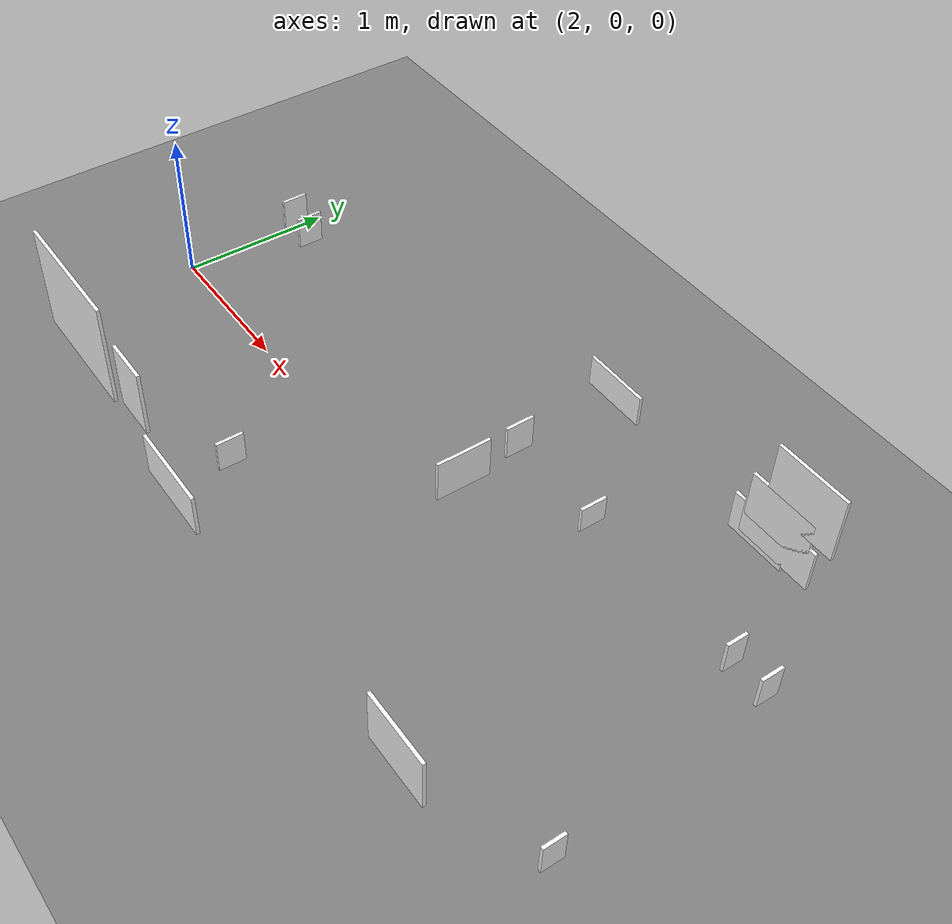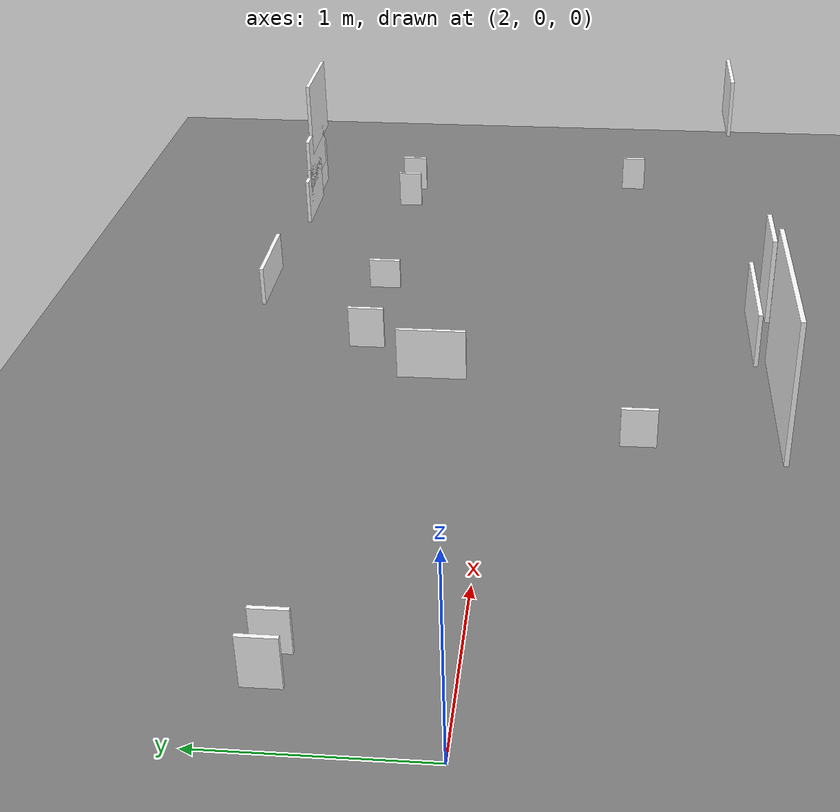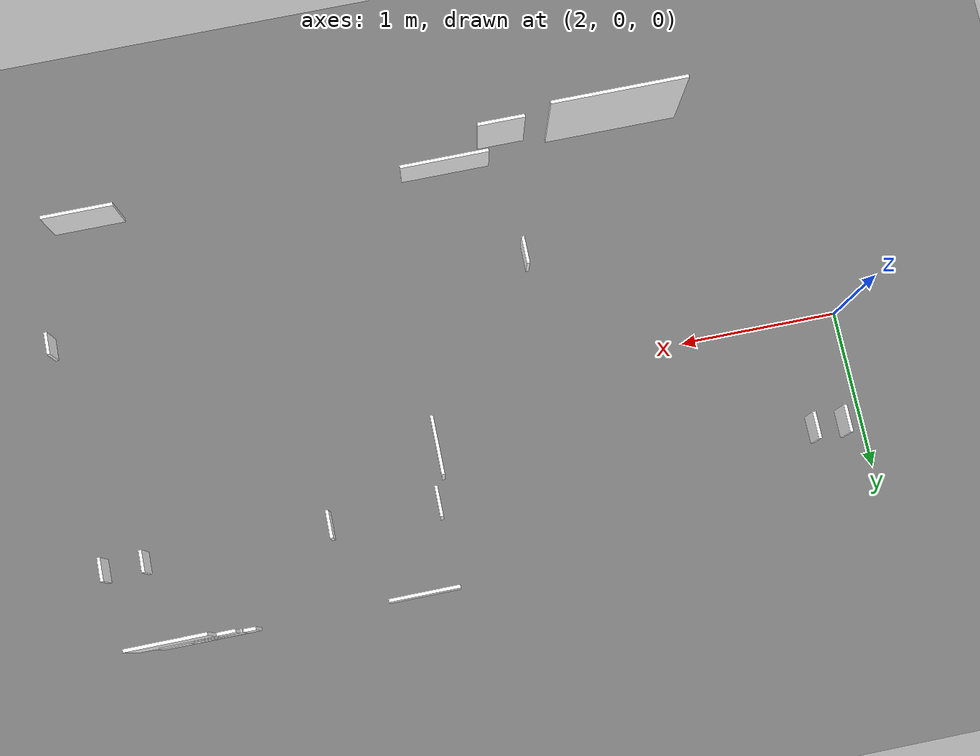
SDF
<sdf version="1.9">
 <world name="tunnel_world">
  <model name="ground_plane">
   <static>true</static>
   <link name="ground">
    <collision name="ground_collision">
     <geometry><plane><normal>0 0 1</normal><size>100 100</size></plane></geometry>
    </collision>
    <visual name="ground_visual">
     <geometry><plane><normal>0 0 1</normal><size>100 100</size></plane></geometry>
     <material>
      <diffuse>0.50 0.50 0.50 1</diffuse>
      <emissive>0.08 0.08 0.08 1</emissive>
      <ambient>0.5 0.5 0.5</ambient>
     </material>
    </visual>
   </link>
  </model>
  <model name="defect_crack_03">
   <static>true</static>
   <pose>3.956 -1.25 1.091 0 0 0</pose>
   <link name="link">
    <visual name="visual">
     <laser_retro>500</laser_retro>
     <geometry><box><size>0.278 0.02 0.4</size></box></geometry>
     <material>
      <ambient>1 1 1 1</ambient>
      <diffuse>1 1 1 1</diffuse>
      <emissive>0.05 0.05 0.05 1</emissive>
      <specular>0.05 0.05 0.05 1</specular>
      <pbr>
       <metal>
        <albedo_map>file:///home/ylf/workspace/inspection_robot/data_gen/textures/crack_5.png</albedo_map>
        <metalness>0.0</metalness>
        <roughness>0.9</roughness>
       </metal>
      </pbr>
     </material>
    </visual>
    <collision name="collision"><geometry><box><size>0.278 0.02 0.4</size></box></geometry></collision>
   </link>
  </model>
  <model name="defect_crack_04">
   <static>true</static>
   <pose>6.342 1.25 0.879 0 0 0</pose>
   <link name="link">
    <visual name="visual">
     <laser_retro>500</laser_retro>
     <geometry><box><size>0.469 0.02 0.425</size></box></geometry>
     <material>
      <ambient>1 1 1 1</ambient>
      <diffuse>1 1 1 1</diffuse>
      <emissive>0.05 0.05 0.05 1</emissive>
      <specular>0.05 0.05 0.05 1</specular>
      <pbr>
       <metal>
        <albedo_map>file:///home/ylf/workspace/inspection_robot/data_gen/textures/crack_4.png</albedo_map>
        <metalness>0.0</metalness>
        <roughness>0.9</roughness>
       </metal>
      </pbr>
     </material>
    </visual>
    <collision name="collision"><geometry><box><size>0.469 0.02 0.425</size></box></geometry></collision>
   </link>
  </model>
  <model name="defect_equip_intrusion_05">
   <static>true</static>
   <pose>4.666 0.367 0.155 0 0 0</pose>
   <link name="link">
    <visual name="visual">
     <laser_retro>900</laser_retro>
     <geometry><box><size>0.02 0.372 0.29</size></box></geometry>
     <material>
      <ambient>1 1 1 1</ambient>
      <diffuse>1 1 1 1</diffuse>
      <emissive>0.05 0.05 0.05 1</emissive>
      <specular>0.05 0.05 0.05 1</specular>
      <pbr>
       <metal>
        <albedo_map>file:///home/ylf/workspace/inspection_robot/data_gen/textures/equip_intrusion_2.png</albedo_map>
        <metalness>0.0</metalness>
        <roughness>0.9</roughness>
       </metal>
      </pbr>
     </material>
    </visual>
   </link>
  </model>
  <model name="defect_leakage_02">
   <static>true</static>
   <pose>3.277 -1.25 1.099 0 0 0</pose>
   <link name="link">
    <visual name="visual">
     <laser_retro>300</laser_retro>
     <geometry><box><size>0.797 0.02 0.644</size></box></geometry>
     <material>
      <ambient>1 1 1 1</ambient>
      <diffuse>1 1 1 1</diffuse>
      <emissive>0.05 0.05 0.05 1</emissive>
      <specular>0.05 0.05 0.05 1</specular>
      <pbr>
       <metal>
        <albedo_map>file:///home/ylf/workspace/inspection_robot/data_gen/textures/leakage_4.png</albedo_map>
        <metalness>0.0</metalness>
        <roughness>0.9</roughness>
       </metal>
      </pbr>
     </material>
    </visual>
    <collision name="collision"><geometry><box><size>0.797 0.02 0.644</size></box></geometry></collision>
   </link>
  </model>
  <model name="defect_leakage_03">
   <static>true</static>
   <pose>6.22 1.25 0.633 0 0 0</pose>
   <link name="link">
    <visual name="visual">
     <laser_retro>300</laser_retro>
     <geometry><box><size>0.446 0.02 0.306</size></box></geometry>
     <material>
      <ambient>1 1 1 1</ambient>
      <diffuse>1 1 1 1</diffuse>
      <emissive>0.05 0.05 0.05 1</emissive>
      <specular>0.05 0.05 0.05 1</specular>
      <pbr>
       <metal>
        <albedo_map>file:///home/ylf/workspace/inspection_robot/data_gen/textures/leakage_5.png</albedo_map>
        <metalness>0.0</metalness>
        <roughness>0.9</roughness>
       </metal>
      </pbr>
     </material>
    </visual>
    <collision name="collision"><geometry><box><size>0.446 0.02 0.306</size></box></geometry></collision>
   </link>
  </model>
  <model name="defect_leakage_05">
   <static>true</static>
   <pose>6.439 -1.25 0.975 0 0 0</pose>
   <link name="link">
    <visual name="visual">
     <laser_retro>300</laser_retro>
     <geometry><box><size>0.421 0.02 0.333</size></box></geometry>
     <material>
      <ambient>1 1 1 1</ambient>
      <diffuse>1 1 1 1</diffuse>
      <emissive>0.05 0.05 0.05 1</emissive>
      <specular>0.05 0.05 0.05 1</specular>
      <pbr>
       <metal>
        <albedo_map>file:///home/ylf/workspace/inspection_robot/data_gen/textures/leakage_1.png</albedo_map>
        <metalness>0.0</metalness>
        <roughness>0.9</roughness>
       </metal>
      </pbr>
     </material>
    </visual>
    <collision name="collision"><geometry><box><size>0.421 0.02 0.333</size></box></geometry></collision>
   </link>
  </model>
  <model name="defect_rail_fastener_broken_02">
   <static>true</static>
   <pose>6.541 0.717 0.264 0 0 0</pose>
   <link name="link">
    <visual name="visual">
     <laser_retro>450</laser_retro>
     <geometry><box><size>0.02 0.137 0.219</size></box></geometry>
     <material>
      <ambient>1 1 1 1</ambient>
      <diffuse>1 1 1 1</diffuse>
      <emissive>0.05 0.05 0.05 1</emissive>
      <specular>0.05 0.05 0.05 1</specular>
      <pbr>
       <metal>
        <albedo_map>file:///home/ylf/workspace/inspection_robot/data_gen/textures/rail_fastener_broken_3.png</albedo_map>
        <metalness>0.0</metalness>
        <roughness>0.9</roughness>
       </metal>
      </pbr>
     </material>
    </visual>
   </link>
  </model>
  <model name="defect_rail_fastener_broken_03">
   <static>true</static>
   <pose>5.402 0.717 0.241 0 0 0</pose>
   <link name="link">
    <visual name="visual">
     <laser_retro>450</laser_retro>
     <geometry><box><size>0.02 0.174 0.172</size></box></geometry>
     <material>
      <ambient>1 1 1 1</ambient>
      <diffuse>1 1 1 1</diffuse>
      <emissive>0.05 0.05 0.05 1</emissive>
      <specular>0.05 0.05 0.05 1</specular>
      <pbr>
       <metal>
        <albedo_map>file:///home/ylf/workspace/inspection_robot/data_gen/textures/rail_fastener_broken_2.png</albedo_map>
        <metalness>0.0</metalness>
        <roughness>0.9</roughness>
       </metal>
      </pbr>
     </material>
    </visual>
   </link>
  </model>
  <model name="defect_rail_fastener_broken_06">
   <static>true</static>
   <pose>2.374 0.717 0.265 0 0 0</pose>
   <link name="link">
    <visual name="visual">
     <laser_retro>450</laser_retro>
     <geometry><box><size>0.02 0.168 0.221</size></box></geometry>
     <material>
      <ambient>1 1 1 1</ambient>
      <diffuse>1 1 1 1</diffuse>
      <emissive>0.05 0.05 0.05 1</emissive>
      <specular>0.05 0.05 0.05 1</specular>
      <pbr>
       <metal>
        <albedo_map>file:///home/ylf/workspace/inspection_robot/data_gen/textures/rail_fastener_broken_5.png</albedo_map>
        <metalness>0.0</metalness>
        <roughness>0.9</roughness>
       </metal>
      </pbr>
     </material>
    </visual>
   </link>
  </model>
  <model name="defect_rail_fastener_broken_08">
   <static>true</static>
   <pose>4.724 0.717 0.271 0 0 0</pose>
   <link name="link">
    <visual name="visual">
     <laser_retro>450</laser_retro>
     <geometry><box><size>0.02 0.188 0.232</size></box></geometry>
     <material>
      <ambient>1 1 1 1</ambient>
      <diffuse>1 1 1 1</diffuse>
      <emissive>0.05 0.05 0.05 1</emissive>
      <specular>0.05 0.05 0.05 1</specular>
      <pbr>
       <metal>
        <albedo_map>file:///home/ylf/workspace/inspection_robot/data_gen/textures/rail_fastener_broken_4.png</albedo_map>
        <metalness>0.0</metalness>
        <roughness>0.9</roughness>
       </metal>
      </pbr>
     </material>
    </visual>
   </link>
  </model>
  <model name="defect_rail_fastener_loose_02">
   <static>true</static>
   <pose>3.888 -0.717 0.259 0 0 0</pose>
   <link name="link">
    <visual name="visual">
     <laser_retro>380</laser_retro>
     <geometry><box><size>0.02 0.176 0.208</size></box></geometry>
     <material>
      <ambient>1 1 1 1</ambient>
      <diffuse>1 1 1 1</diffuse>
      <emissive>0.05 0.05 0.05 1</emissive>
      <specular>0.05 0.05 0.05 1</specular>
      <pbr>
       <metal>
        <albedo_map>file:///home/ylf/workspace/inspection_robot/data_gen/textures/rail_fastener_loose_5.png</albedo_map>
        <metalness>0.0</metalness>
        <roughness>0.9</roughness>
       </metal>
      </pbr>
     </material>
    </visual>
   </link>
  </model>
  <model name="defect_rail_fastener_missing_03">
   <static>true</static>
   <pose>6.904 -0.717 0.26 0 0 0</pose>
   <link name="link">
    <visual name="visual">
     <laser_retro>520</laser_retro>
     <geometry><box><size>0.02 0.141 0.21</size></box></geometry>
     <material>
      <ambient>1 1 1 1</ambient>
      <diffuse>1 1 1 1</diffuse>
      <emissive>0.05 0.05 0.05 1</emissive>
      <specular>0.05 0.05 0.05 1</specular>
      <pbr>
       <metal>
        <albedo_map>file:///home/ylf/workspace/inspection_robot/data_gen/textures/rail_fastener_missing_1.png</albedo_map>
        <metalness>0.0</metalness>
        <roughness>0.9</roughness>
       </metal>
      </pbr>
     </material>
    </visual>
   </link>
  </model>
  <model name="defect_rail_fastener_missing_06">
   <static>true</static>
   <pose>6.792 0.717 0.265 0 0 0</pose>
   <link name="link">
    <visual name="visual">
     <laser_retro>520</laser_retro>
     <geometry><box><size>0.02 0.145 0.22</size></box></geometry>
     <material>
      <ambient>1 1 1 1</ambient>
      <diffuse>1 1 1 1</diffuse>
      <emissive>0.05 0.05 0.05 1</emissive>
      <specular>0.05 0.05 0.05 1</specular>
      <pbr>
       <metal>
        <albedo_map>file:///home/ylf/workspace/inspection_robot/data_gen/textures/rail_fastener_missing_4.png</albedo_map>
        <metalness>0.0</metalness>
        <roughness>0.9</roughness>
       </metal>
      </pbr>
     </material>
    </visual>
   </link>
  </model>
  <model name="defect_rail_fastener_missing_07">
   <static>true</static>
   <pose>2.185 0.717 0.28 0 0 0</pose>
   <link name="link">
    <visual name="visual">
     <laser_retro>520</laser_retro>
     <geometry><box><size>0.02 0.171 0.25</size></box></geometry>
     <material>
      <ambient>1 1 1 1</ambient>
      <diffuse>1 1 1 1</diffuse>
      <emissive>0.05 0.05 0.05 1</emissive>
      <specular>0.05 0.05 0.05 1</specular>
      <pbr>
       <metal>
        <albedo_map>file:///home/ylf/workspace/inspection_robot/data_gen/textures/rail_fastener_missing_5.png</albedo_map>
        <metalness>0.0</metalness>
        <roughness>0.9</roughness>
       </metal>
      </pbr>
     </material>
    </visual>
   </link>
  </model>
  <model name="defect_spalling_03">
   <static>true</static>
   <pose>4.91 1.25 0.506 0 0 0</pose>
   <link name="link">
    <visual name="visual">
     <laser_retro>700</laser_retro>
     <geometry><box><size>0.426 0.02 0.202</size></box></geometry>
     <material>
      <ambient>1 1 1 1</ambient>
      <diffuse>1 1 1 1</diffuse>
      <emissive>0.05 0.05 0.05 1</emissive>
      <specular>0.05 0.05 0.05 1</specular>
      <pbr>
       <metal>
        <albedo_map>file:///home/ylf/workspace/inspection_robot/data_gen/textures/spalling_3.png</albedo_map>
        <metalness>0.0</metalness>
        <roughness>0.9</roughness>
       </metal>
      </pbr>
     </material>
    </visual>
    <collision name="collision"><geometry><box><size>0.426 0.02 0.202</size></box></geometry></collision>
   </link>
  </model>
  <model name="defect_spalling_05">
   <static>true</static>
   <pose>4.294 -1.25 0.676 0 0 0</pose>
   <link name="link">
    <visual name="visual">
     <laser_retro>700</laser_retro>
     <geometry><box><size>0.545 0.02 0.272</size></box></geometry>
     <material>
      <ambient>1 1 1 1</ambient>
      <diffuse>1 1 1 1</diffuse>
      <emissive>0.05 0.05 0.05 1</emissive>
      <specular>0.05 0.05 0.05 1</specular>
      <pbr>
       <metal>
        <albedo_map>file:///home/ylf/workspace/inspection_robot/data_gen/textures/spalling_5.png</albedo_map>
        <metalness>0.0</metalness>
        <roughness>0.9</roughness>
       </metal>
      </pbr>
     </material>
    </visual>
    <collision name="collision"><geometry><box><size>0.545 0.02 0.272</size></box></geometry></collision>
   </link>
  </model>
  <model name="defect_spalling_06">
   <static>true</static>
   <pose>6.108 1.25 0.434 0 0 0</pose>
   <link name="link">
    <visual name="visual">
     <laser_retro>700</laser_retro>
     <geometry><box><size>0.393 0.02 0.26</size></box></geometry>
     <material>
      <ambient>1 1 1 1</ambient>
      <diffuse>1 1 1 1</diffuse>
      <emissive>0.05 0.05 0.05 1</emissive>
      <specular>0.05 0.05 0.05 1</specular>
      <pbr>
       <metal>
        <albedo_map>file:///home/ylf/workspace/inspection_robot/data_gen/textures/spalling_2.png</albedo_map>
        <metalness>0.0</metalness>
        <roughness>0.9</roughness>
       </metal>
      </pbr>
     </material>
    </visual>
    <collision name="collision"><geometry><box><size>0.393 0.02 0.26</size></box></geometry></collision>
   </link>
  </model>
  <model name="defect_spalling_07">
   <static>true</static>
   <pose>6.237 1.25 0.476 0 0 0</pose>
   <link name="link">
    <visual name="visual">
     <laser_retro>700</laser_retro>
     <geometry><box><size>0.501 0.02 0.275</size></box></geometry>
     <material>
      <ambient>1 1 1 1</ambient>
      <diffuse>1 1 1 1</diffuse>
      <emissive>0.05 0.05 0.05 1</emissive>
      <specular>0.05 0.05 0.05 1</specular>
      <pbr>
       <metal>
        <albedo_map>file:///home/ylf/workspace/inspection_robot/data_gen/textures/spalling_5.png</albedo_map>
        <metalness>0.0</metalness>
        <roughness>0.9</roughness>
       </metal>
      </pbr>
     </material>
    </visual>
    <collision name="collision"><geometry><box><size>0.501 0.02 0.275</size></box></geometry></collision>
   </link>
  </model>
 </world>
</sdf>
